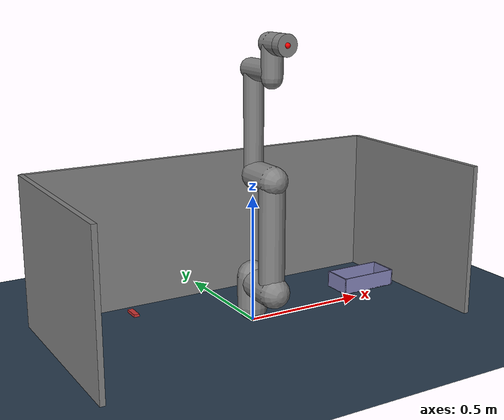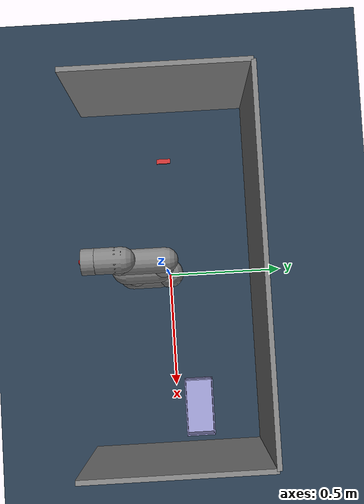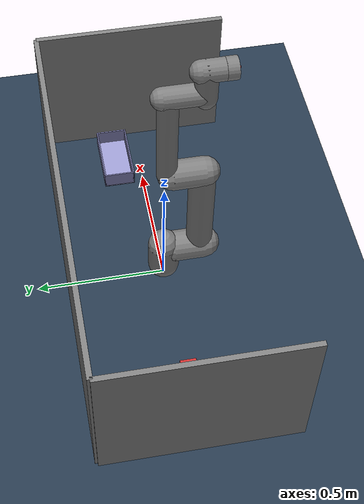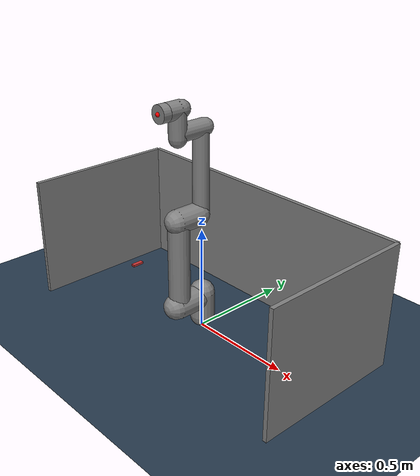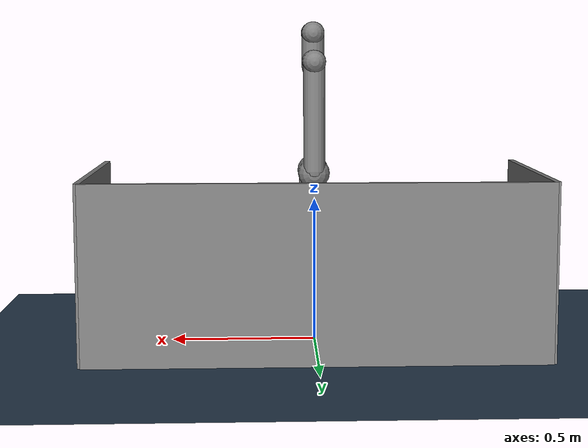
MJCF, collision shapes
<mujoco>
    <include file="robot_empty.xml" />
    <compiler angle="radian" meshdir="assets" autolimits="true" texturedir="assets"
        balanceinertia="true" />
    <option gravity="0 0 -9.81" />

    <visual>
        <headlight diffuse="0.6 0.6 0.6" ambient="0.1 0.1 0.1" specular="0 0 0" />
        <global azimuth="120" elevation="-20" />
    </visual>

    <asset>
        <texture name="grid" type="2d" builtin="checker" rgb1=".2 .3 .4" rgb2=".1 0.15 0.2"
            width="512" height="512" mark="cross" markrgb=".8 .8 .8" />
        <material name="grid" texture="grid" texrepeat="1 1" texuniform="true" />
    </asset>

    <worldbody>
        <light pos="0 0 1.5" directional="true" />
        <geom name="floor" size="10 10 0.01" type="plane" material="grid" />

        <body name="environment" pos="0 0 0.15" quat="1 0 0 0">
            <geom name="wall1" type="box" size="0.77 0.01 0.3" pos="0 .375 0.15"
                rgba="0.5 0.5 0.5 1" group="1" conaffinity="1" contype="1" />
            <geom name="wall2" type="box" size="0.01 0.375 0.3" pos=".77 0 0.15"
                rgba="0.5 0.5 0.5 1" group="1" conaffinity="1" contype="1" />
            <geom name="wall3" type="box" size="0.01 0.375 0.3" pos="-.77 0 0.15"
                rgba="0.5 0.5 0.5 1" group="1" conaffinity="1" contype="1" />
        </body>
        <body name="open_box_body" pos="0.6 0.1 0">
            <geom name="open_box_bottom" type="box" size="0.125 0.0625 0.0025" pos="0 0 0.0025"
                rgba="0.6 0.6 0.8 1" />

            <geom name="open_box_front_wall" type="box" size="0.125 0.0025 0.03375"
                pos="0 0.060 0.03375" rgba="0.5 0.5 0.7 1" />

            <geom name="open_box_back_wall" type="box" size="0.125 0.0025 0.03375"
                pos="0 -0.060 0.03375" rgba="0.5 0.5 0.7 1" />

            <geom name="open_box_right_wall" type="box" size="0.0025 0.0625 0.03375"
                pos="0.1225 0 0.03375" rgba="0.5 0.5 0.7 1" />

            <geom name="open_box_left_wall" type="box" size="0.0025 0.0625 0.03375"
                pos="-0.1225 0 0.03375" rgba="0.5 0.5 0.7 1" />
        </body>
        <body name="shark_body" pos="-0.5 0 0.13" quat="0.707 0 0 0.707">
            <inertial mass="0.5" pos="0 0 0" diaginertia="0.00001042 0.000077083 0.00083" />
            <freejoint />
            <geom type="box" contype="1" conaffinity="1" condim="3" size="0.03 0.01 0.005"
                pos="0 0 0" rgba=".8 .2 .2 1" friction="1 0.005 0.0001" />
        </body>
    </worldbody>
</mujoco>

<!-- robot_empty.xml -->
<mujoco model="ur5e">
  <compiler angle="radian" meshdir="assets" autolimits="true" />

  <option integrator="implicitfast" />

  <default>
    <default class="ur5e">
      <material specular="0.5" shininess="0.25" />
      <joint axis="0 1 0" range="-6.28319 6.28319" armature="0.1" />
      <general gaintype="fixed" biastype="affine" ctrlrange="-6.2831 6.2831" gainprm="2000"
        biasprm="0 -2000 -400" forcerange="-150 150" />
      <default class="size3">
        <default class="size3_limited">
          <joint range="-3.1415 3.1415" />
          <general ctrlrange="-3.1415 3.1415" />
        </default>
      </default>
      <default class="size1">
        <general gainprm="500" biasprm="0 -500 -100" forcerange="-28 28" />
      </default>
      <default class="visual">
        <geom type="mesh" contype="0" conaffinity="0" group="2" />
      </default>
      <default class="collision">
        <geom type="capsule" group="3" />
        <default class="eef_collision">
          <geom type="cylinder" />
        </default>
      </default>
      <site size="0.001" rgba="0.5 0.5 0.5 0.3" group="4" />
    </default>
    <default class="2f85">
      <mesh scale="0.001 0.001 0.001" />
      <general biastype="affine" />
      <site type="sphere" rgba="0.9 0.9 0.9 1" size="0.005" group="4" />
      <joint axis="1 0 0" />
      <default class="driver">
        <joint range="0 0.8" armature="0.005" damping="0.1" solimplimit="0.95 0.99 0.001"
          solreflimit="0.005 1" />
      </default>
      <default class="follower">
        <joint range="-0.872664 0.872664" pos="0 -0.018 0.0065" solimplimit="0.95 0.99 0.001"
          solreflimit="0.005 1" stiffness="1" />
      </default>
      <default class="spring_link">
        <joint range="-0.29670597283 0.8" stiffness="0.05" springref="2.62" damping="0.00125" />
      </default>
      <default class="coupler">
        <joint range="-1.57 0" solimplimit="0.95 0.99 0.001" solreflimit="0.005 1" />
      </default>
      <default class="2f85/visual">
        <geom type="mesh" contype="0" conaffinity="0" group="2" />
      </default>
      <default class="2f85/collision">
        <geom type="mesh" group="3" />
      </default>
    </default>

    <default class="custom_gripper">
      <default class="custom_gripper/visual">
        <geom type="mesh" contype="0" conaffinity="0" group="2" />
      </default>
      <default class="custom_gripper/collision">
        <geom type="mesh" group="4" />
      </default>
      <default class="hook">
        <position kp="500" kv="50" forcerange="-28 28" />
      </default>
    </default>

  </default>

  <asset>
    <material class="ur5e" name="black" rgba="0.033 0.033 0.033 1" />
    <material class="ur5e" name="jointgray" rgba="0.278 0.278 0.278 1" />
    <material class="ur5e" name="linkgray" rgba="0.82 0.82 0.82 1" />
    <material class="ur5e" name="urblue" rgba="0.49 0.678 0.8 1" />

    <mesh file="ur5e/base_0.obj" />
    <mesh file="ur5e/base_1.obj" />
    <mesh file="ur5e/shoulder_0.obj" />
    <mesh file="ur5e/shoulder_1.obj" />
    <mesh file="ur5e/shoulder_2.obj" />
    <mesh file="ur5e/upperarm_0.obj" />
    <mesh file="ur5e/upperarm_1.obj" />
    <mesh file="ur5e/upperarm_2.obj" />
    <mesh file="ur5e/upperarm_3.obj" />
    <mesh file="ur5e/forearm_0.obj" />
    <mesh file="ur5e/forearm_1.obj" />
    <mesh file="ur5e/forearm_2.obj" />
    <mesh file="ur5e/forearm_3.obj" />
    <mesh file="ur5e/wrist1_0.obj" />
    <mesh file="ur5e/wrist1_1.obj" />
    <mesh file="ur5e/wrist1_2.obj" />
    <mesh file="ur5e/wrist2_0.obj" />
    <mesh file="ur5e/wrist2_1.obj" />
    <mesh file="ur5e/wrist2_2.obj" />
    <mesh file="ur5e/wrist3.obj" />
    <material name="2f85/gray" rgba="0.4627 0.4627 0.4627 1" />
    <material name="2f85/black" rgba="0.149 0.149 0.149 1" />

    <mesh class="2f85" file="2f85/base_mount.stl" />
    <mesh class="2f85" file="2f85/base.stl" />
    <mesh class="2f85" file="2f85/driver.stl" />
    <mesh class="2f85" file="2f85/coupler.stl" />
    <mesh class="2f85" file="2f85/follower.stl" />
    <mesh class="2f85" file="2f85/pad.stl" />
    <mesh class="2f85" file="2f85/silicone_pad.stl" />
    <mesh class="2f85" file="2f85/spring_link.stl" />

    <mesh name="left_base_link" file="2f85/custom_gripper/right_base_link.STL" />
    <mesh name="left_base_link_collision" file="2f85/custom_gripper/right_collision.STL"
      scale="0.001 0.001 0.001" />

    <mesh name="right_base_link" file="2f85/custom_gripper/left_base_link.STL" />
    <mesh name="right_base_link_collision"
      file="2f85/custom_gripper/left_base_link_collision_coacd.stl" />
    <mesh name="hook_link" file="2f85/custom_gripper/hook_link.STL" />
    <mesh name="hook_link_collision" file="2f85/custom_gripper/hook_link_collision.STL" />
  </asset>

  <worldbody>
    <light name="light1" pos="0 0 2" dir="0 0 -1" diffuse="1 1 1" specular="0.5 0.5 0.5" />
    <body name="ur5e/base" childclass="ur5e" quat="1 0 0 0" pos="0 0 0">
      <inertial mass="4.0" pos="0 0 0" diaginertia="0.00443333156 0.00443333156 0.0072" />
      <geom mesh="base_0" material="black" class="visual" />
      <geom mesh="base_1" material="jointgray" class="visual" />
      <body name="shoulder_link" pos="0 0 0.163" quat="0 0 0 1">
        <inertial mass="3.7" pos="0 0 0" diaginertia="0.0102675 0.0102675 0.00666" />
        <joint name="shoulder_pan_joint" class="size3" axis="0 0 1" damping="1" range="-0.1 3.18" />
        <geom mesh="shoulder_0" material="urblue" class="visual" />
        <geom mesh="shoulder_1" material="black" class="visual" />
        <geom mesh="shoulder_2" material="jointgray" class="visual" />
        <geom class="collision" size="0.06 0.06" pos="0 0 -0.04" />
        <body name="upper_arm_link" pos="0 0.138 0" quat="1 0 0 0">
          <inertial mass="8.393" pos="0 0 0.2125" diaginertia="0.133886 0.133886 0.0151074" />
          <joint name="shoulder_lift_joint" class="size3" range="0 1.58" />
          <geom mesh="upperarm_0" material="linkgray" class="visual" />
          <geom mesh="upperarm_1" material="black" class="visual" />
          <geom mesh="upperarm_2" material="jointgray" class="visual" />
          <geom mesh="upperarm_3" material="urblue" class="visual" />
          <geom class="collision" pos="0 -0.04 0" quat="1 1 0 0" size="0.06 0.06" />
          <geom class="collision" size="0.05 0.2" pos="0 0 0.2" />
          <body name="forearm_link" pos="0 -0.131 0.425">
            <inertial mass="2.275" pos="0 0 0.196" diaginertia="0.0311796 0.0311796 0.004095" />
            <joint name="elbow_joint" class="size3_limited" range="0 3.15" />
            <geom mesh="forearm_0" material="urblue" class="visual" />
            <geom mesh="forearm_1" material="linkgray" class="visual" />
            <geom mesh="forearm_2" material="black" class="visual" />
            <geom mesh="forearm_3" material="jointgray" class="visual" />
            <geom class="collision" pos="0 0.08 0" quat="1 1 0 0" size="0.055 0.06" />
            <geom class="collision" size="0.038 0.19" pos="0 0 0.2" />
            <body name="wrist_1_link" pos="0 0 0.392" quat="1 0 0 0">
              <inertial mass="1.219" pos="0 0.127 0" diaginertia="0.0025599 0.0025599 0.0021942" />
              <joint name="wrist_1_joint" class="size1" range="-1.20 3.14" />
              <geom mesh="wrist1_0" material="black" class="visual" />
              <geom mesh="wrist1_1" material="urblue" class="visual" />
              <geom mesh="wrist1_2" material="jointgray" class="visual" />
              <geom class="collision" pos="0 0.05 0" quat="1 1 0 0" size="0.04 0.07" />
              <body name="wrist_2_link" pos="0 0.127 0">
                <inertial mass="1.219" pos="0 0 0.1" diaginertia="0.0025599 0.0025599 0.0021942" />
                <joint name="wrist_2_joint" axis="0 0 1" class="size1" range="-3.14 3.14" />
                <geom mesh="wrist2_0" material="black" class="visual" />
                <geom mesh="wrist2_1" material="urblue" class="visual" />
                <geom mesh="wrist2_2" material="jointgray" class="visual" />
                <geom class="collision" size="0.04 0.06" pos="0 0 0.04" />
                <geom class="collision" pos="0 0.02 0.1" quat="1 1 0 0" size="0.04 0.04" />
                <body name="wrist_3_link" pos="0 0 0.1" quat="1 0 0 0">
                  <inertial mass="0.1889" pos="0 0.0771683 0" quat="1 0 0 1"
                    diaginertia="0.000132134 9.90863e-05 9.90863e-05" />
                  <joint name="wrist_3_joint" class="size1" />
                  <geom material="linkgray" mesh="wrist3" class="visual" />
                  <geom class="eef_collision" pos="0 0.08 0" quat="1 1 0 0" size="0.04 0.02" />
                  <body name="attachment" pos="0 0.1 0" quat="1 -1 0 0">
                    <site name="attachment_site" rgba="1 0 0 1" size="0.01" group="1" />
                  </body>
                </body>
              </body>
            </body>
          </body>
        </body>
      </body>
    </body>
  </worldbody>

  <actuator>
    <general class="size3" name="shoulder_pan" joint="shoulder_pan_joint" forcerange="-18 18"
      forcelimited="true" />
    <general class="size3" name="shoulder_lift" joint="shoulder_lift_joint" />
    <general class="size3_limited" name="elbow" joint="elbow_joint" />
    <general class="size1" name="wrist_1" joint="wrist_1_joint" />
    <general class="size1" name="wrist_2" joint="wrist_2_joint" />
    <general class="size1" name="wrist_3" joint="wrist_3_joint" />
  </actuator>
</mujoco>
